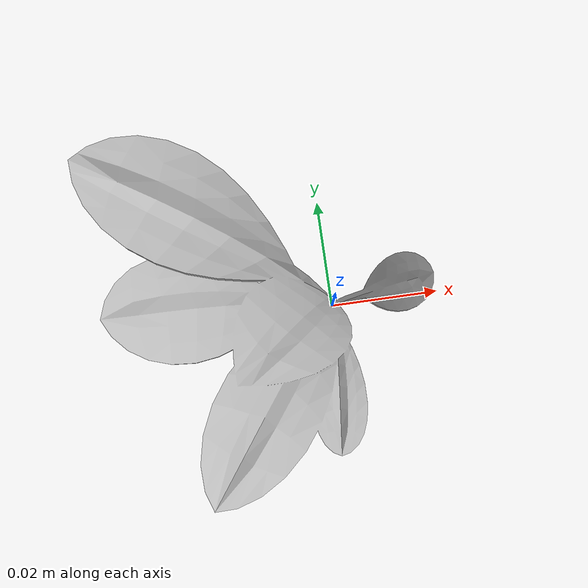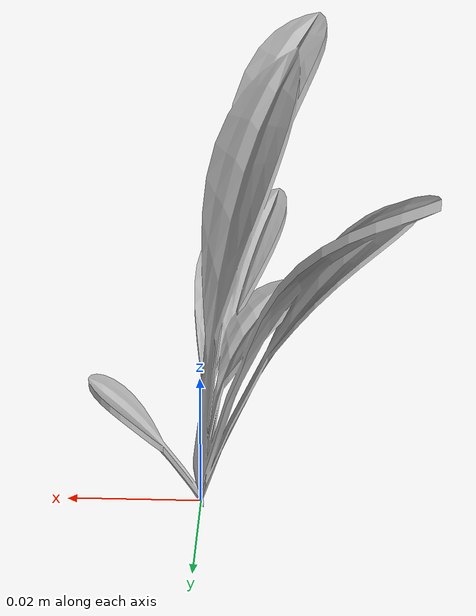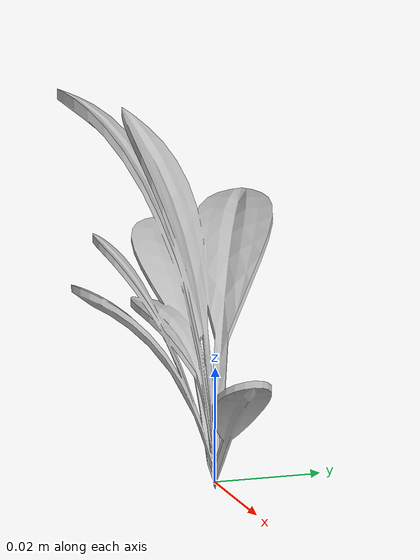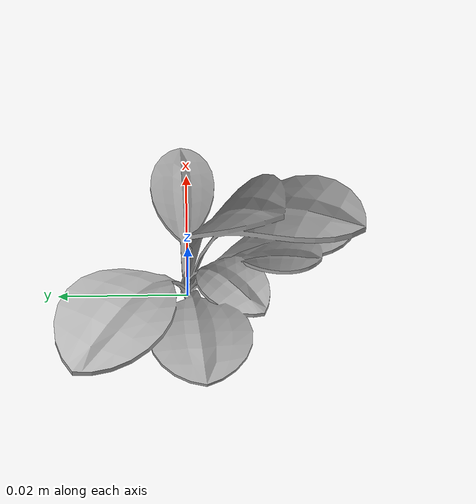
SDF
<sdf version="1.6">
  <model name="sugar_beet_21">
    <static>true</static>
    <link name="body">
      <visual name="visual">
        <geometry>
          <mesh>
            <uri>file:///sugar_beet_21/media/sugar_beet.dae</uri>
          </mesh>
        </geometry>
      </visual>
    </link>
  </model>
</sdf>
